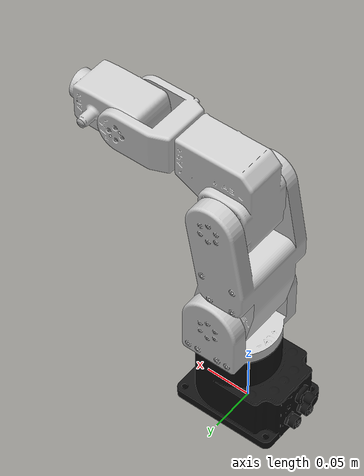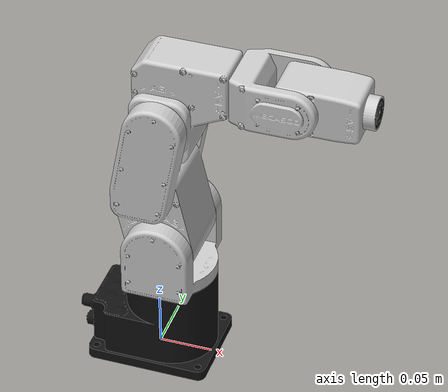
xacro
<?xml version="1.0"?>
<robot xmlns:xacro="http://wiki.ros.org/xacro" name="meca_500_r3">
  <xacro:arg name="prefix" default="meca_500_" />
  <xacro:arg name="connected_to" default="" />

  <xacro:arg name="load_ros2_control" default="true" />
  <xacro:arg name="robot_ip" default="0.0.0.0" />
  <xacro:arg name="state_port" default="1801" />
  <xacro:arg name="command_port" default="1802" />
  <xacro:arg name="ft_sensor_port" default="1803" />
  <xacro:arg name="bind_state_port" default="false" />
  <xacro:arg name="bind_command_port" default="false" />
  <xacro:arg name="bind_ft_sensor_port" default="false" />
  <xacro:arg name="has_ft_sensor" default="true" />
  <xacro:arg name="ft_sensor_name" default="minione_pro_ecat" />

  <xacro:include filename="$(find mecademic_description)/urdf/meca_500_r3.xacro" />
  <xacro:meca_500_r3 prefix="$(arg prefix)" connected_to="$(arg connected_to)" />

  <xacro:if value="$(arg load_ros2_control)">
    <xacro:include filename="$(find mecademic_description)/ros2_control/meca_500_r3_ecat.ros2_control.xacro" />
    <xacro:meca_500_r3_ecat_interface
            prefix="$(arg prefix)"
            robot_ip="$(arg robot_ip)"
            state_port="$(arg state_port)"
            command_port="$(arg command_port)"
            ft_sensor_port="$(arg ft_sensor_port)"
            bind_state_port="$(arg bind_state_port)"
            bind_command_port="$(arg bind_command_port)"
            bind_ft_sensor_port="$(arg bind_ft_sensor_port)"
            has_ft_sensor="$(arg has_ft_sensor)"
            ft_sensor_name="$(arg ft_sensor_name)" />
  </xacro:if>

</robot>

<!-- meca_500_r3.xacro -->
<robot xmlns:xacro="http://wiki.ros.org/xacro">

  <xacro:macro name="meca_500_r3" params="prefix connected_to:=''">

    <xacro:if value="${connected_to == ''}">
      <link name="world" />
      <xacro:property name="base_frame_name" value="world"/>
    </xacro:if>
    <xacro:unless value="${connected_to == ''}">
      <xacro:property name="base_frame_name" value="${connected_to}"/>
    </xacro:unless>

    <!-- Base link is the center of the robot's bottom plate -->
    <link name="${prefix}base_link">
      <visual>
        <origin xyz="0 0 0" rpy="0 0 0" />
        <geometry>
          <mesh filename="package://mecademic_description/meshes/meca_500_r3_base.dae" />
        </geometry>
      </visual>
      <collision>
        <origin xyz="0 0 0" rpy="0 0 0" />
        <geometry>
          <mesh filename="package://mecademic_description/meshes/meca_500_r3_base_collision.stl" />
        </geometry>
      </collision>
    </link>
    <joint name="${prefix}base" type="fixed">
      <parent link="${base_frame_name}" />
      <child link="${prefix}base_link" />
      <origin xyz="0 0 0" rpy="0 0 0" />
    </joint>

    <!-- Joint 1 -->
    <link name="${prefix}axis_1_link">
      <visual>
        <origin xyz="0 0 0" rpy="0 0 0" />
        <geometry>
          <mesh filename="package://mecademic_description/meshes/meca_500_r3_j1.dae" />
        </geometry>
      </visual>
      <collision>
        <origin xyz="0 0 0" rpy="0 0 0" />
        <geometry>
          <mesh filename="package://mecademic_description/meshes/meca_500_r3_j1_collision.stl" />
        </geometry>
      </collision>
    </link>

    <joint name="${prefix}axis_1_joint" type="revolute">
      <origin xyz="0.012498 0 0.091" rpy="0 0 0" />
      <parent link="${prefix}base_link" />
      <child link="${prefix}axis_1_link" />
      <axis xyz="0 0 1" />
      <limit effort="10.0" velocity="2.61799" lower="-3.05433" upper="3.05433" />
    </joint>

    <!-- Joint 2 -->
    <link name="${prefix}axis_2_link">
      <visual>
        <origin xyz="0 0 0" rpy="0 0 0" />
        <geometry>
          <mesh filename="package://mecademic_description/meshes/meca_500_r3_j2.dae" />
        </geometry>
      </visual>
      <collision>
        <origin xyz="0 0 0" rpy="0 0 0" />
        <geometry>
          <mesh filename="package://mecademic_description/meshes/meca_500_r3_j2_collision.stl" />
        </geometry>
      </collision>
    </link>

    <joint name="${prefix}axis_2_joint" type="revolute">
      <origin xyz="0 0 0.044" rpy="0 0 0" />
      <parent link="${prefix}axis_1_link" />
      <child link="${prefix}axis_2_link" />
      <axis xyz="0 1 0" />
      <limit effort="10.0" velocity="2.61799" lower="-1.22173048" upper="1.5708" />
    </joint>

    <!-- Joint 3 -->
    <link name="${prefix}axis_3_link">
      <visual>
        <origin xyz="0 0 0" rpy="0 0 0" />
        <geometry>
          <mesh filename="package://mecademic_description/meshes/meca_500_r3_j3.dae" />
        </geometry>
      </visual>
      <collision>
        <origin xyz="0 0 0" rpy="0 0 0" />
        <geometry>
          <mesh filename="package://mecademic_description/meshes/meca_500_r3_j3_collision.stl" />
        </geometry>
      </collision>
    </link>

    <joint name="${prefix}axis_3_joint" type="revolute">
      <origin xyz="0 0 0.135" rpy="0 0 0" />
      <parent link="${prefix}axis_2_link" />
      <child link="${prefix}axis_3_link" />
      <axis xyz="0 1 0" />
      <limit effort="10.0" velocity="3.14159" lower="-2.35619" upper="1.22173048" />
    </joint>

    <!-- Joint 4 -->
    <link name="${prefix}axis_4_link">
      <visual>
        <origin xyz="0 0 0" rpy="0 0 0" />
        <geometry>
          <mesh filename="package://mecademic_description/meshes/meca_500_r3_j4.dae" />
        </geometry>
      </visual>
      <collision>
        <origin xyz="0 0 0" rpy="0 0 0" />
        <geometry>
          <mesh filename="package://mecademic_description/meshes/meca_500_r3_j4_collision.stl" />
        </geometry>
      </collision>
    </link>

    <joint name="${prefix}axis_4_joint" type="revolute">
      <origin xyz="0 0 0.038" rpy="0 0 0" />
      <parent link="${prefix}axis_3_link" />
      <child link="${prefix}axis_4_link" />
      <axis xyz="1 0 0" />
      <limit effort="10.0" velocity="5.23599" lower="-2.96706" upper="2.96706" />
    </joint>

    <!-- Joint 5 -->
    <link name="${prefix}axis_5_link">
      <visual>
        <origin xyz="0 0 0" rpy="0 0 0" />
        <geometry>
          <mesh filename="package://mecademic_description/meshes/meca_500_r3_j5.dae" />
        </geometry>
      </visual>
      <collision>
        <origin xyz="0 0 0" rpy="0 0 0" />
        <geometry>
          <mesh filename="package://mecademic_description/meshes/meca_500_r3_j5_collision.stl" />
        </geometry>
      </collision>
    </link>

    <joint name="${prefix}axis_5_joint" type="revolute">
      <origin xyz="0.12 0 0" rpy="0 0 0" />
      <parent link="${prefix}axis_4_link" />
      <child link="${prefix}axis_5_link" />
      <axis xyz="0 1 0" />
      <limit effort="10.0" velocity="5.23599" lower="-2.00713" upper="2.00713" />
    </joint>

    <!-- Joint 6 -->
    <link name="${prefix}axis_6_link">
      <visual>
        <origin xyz="0 0 0" rpy="0 0 0" />
        <geometry>
          <mesh filename="package://mecademic_description/meshes/meca_500_r3_j6.dae" />
        </geometry>
      </visual>
      <collision>
        <origin xyz="0 0 0" rpy="0 0 0" />
        <geometry>
          <mesh filename="package://mecademic_description/meshes/meca_500_r3_j6_collision.stl" />
        </geometry>
      </collision>
    </link>

    <joint name="${prefix}axis_6_joint" type="revolute">
      <origin xyz="0.07 0 0" rpy="0 0 0" />
      <parent link="${prefix}axis_5_link" />
      <child link="${prefix}axis_6_link" />
      <axis xyz="1 0 0" />
      <limit effort="10.0" velocity="8.72665" lower="-3.14159" upper="3.14159" />
    </joint>

    <link name="${prefix}tool0"/>

    <joint name="${prefix}tool_joint" type="fixed">
      <origin rpy="0 1.5707 0" xyz="0 0 0"/>
      <parent link="${prefix}axis_6_link"/>
      <child link="${prefix}tool0"/>
    </joint>

    <!-- TODO ROS-Industrial 'base', 'flange' and 'tool0' frames -->
  </xacro:macro>
</robot>
